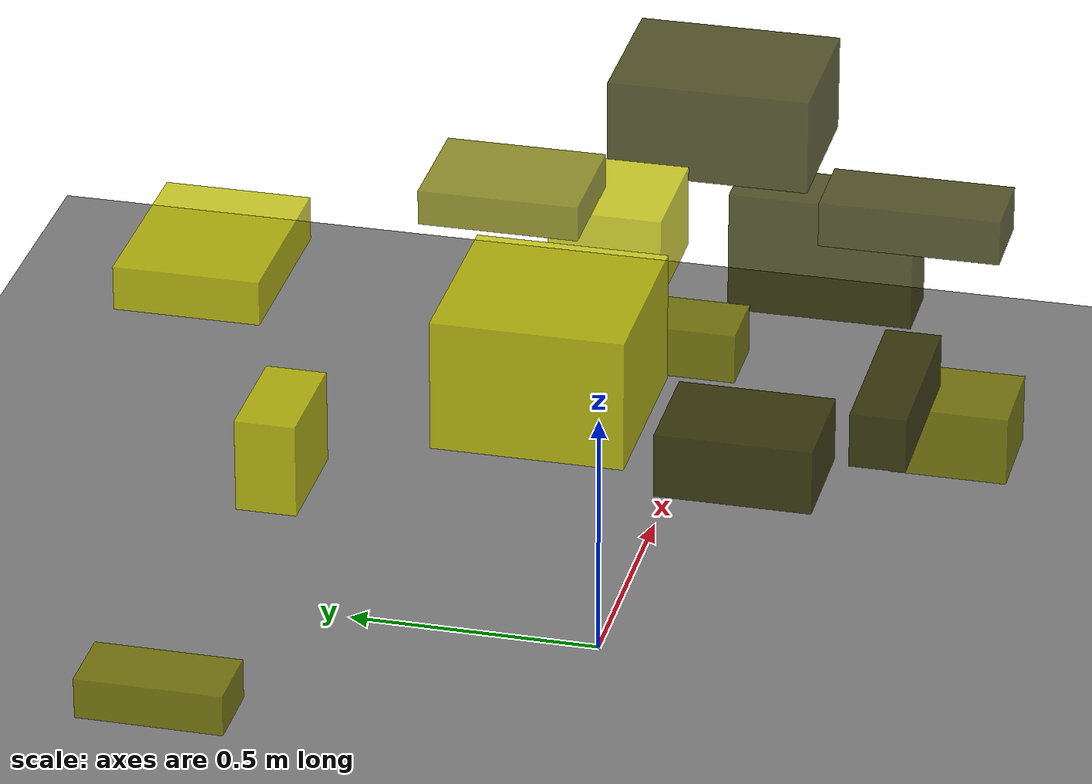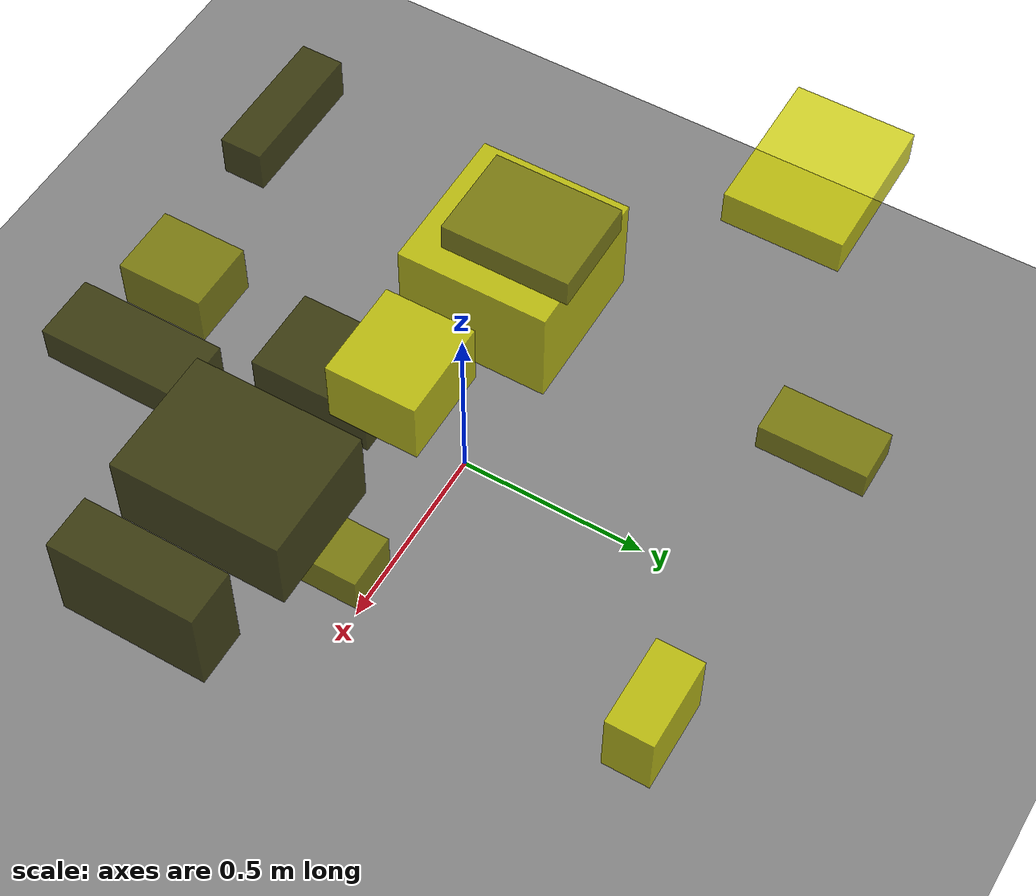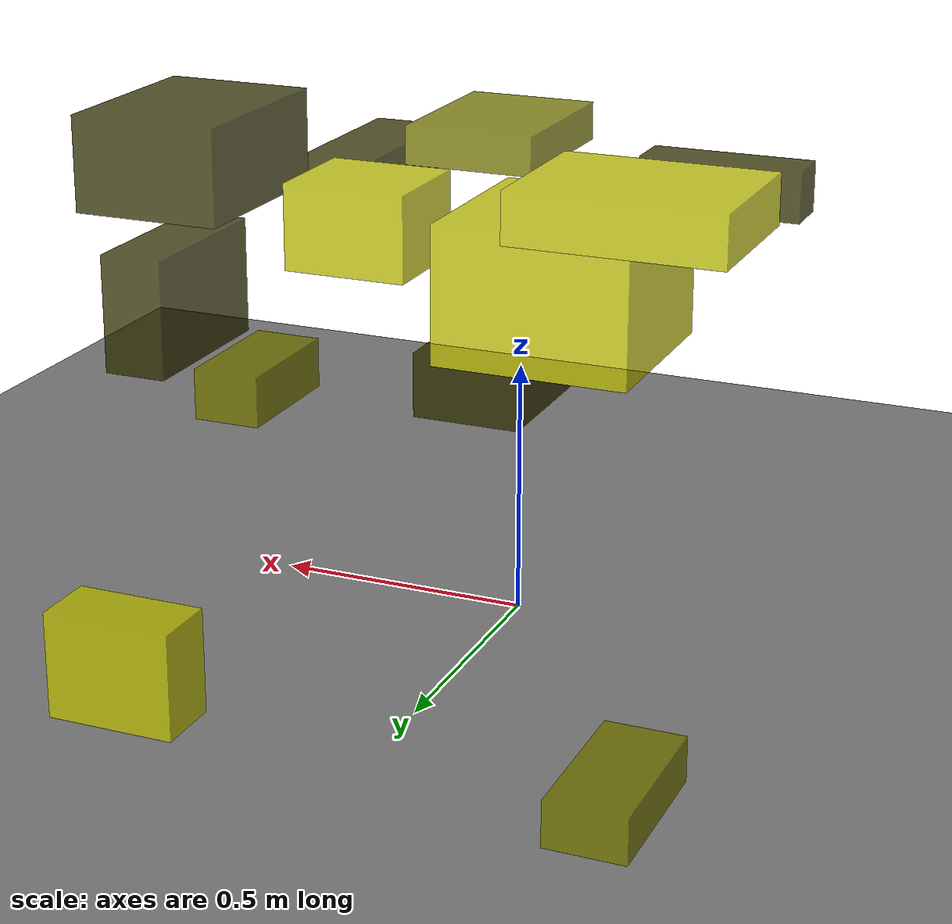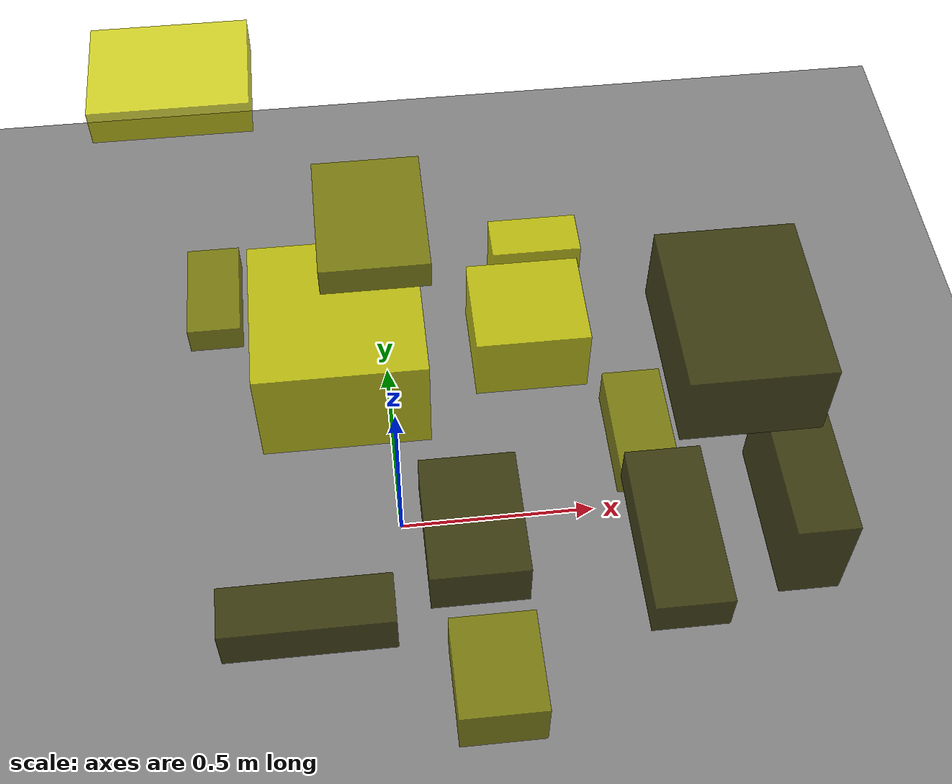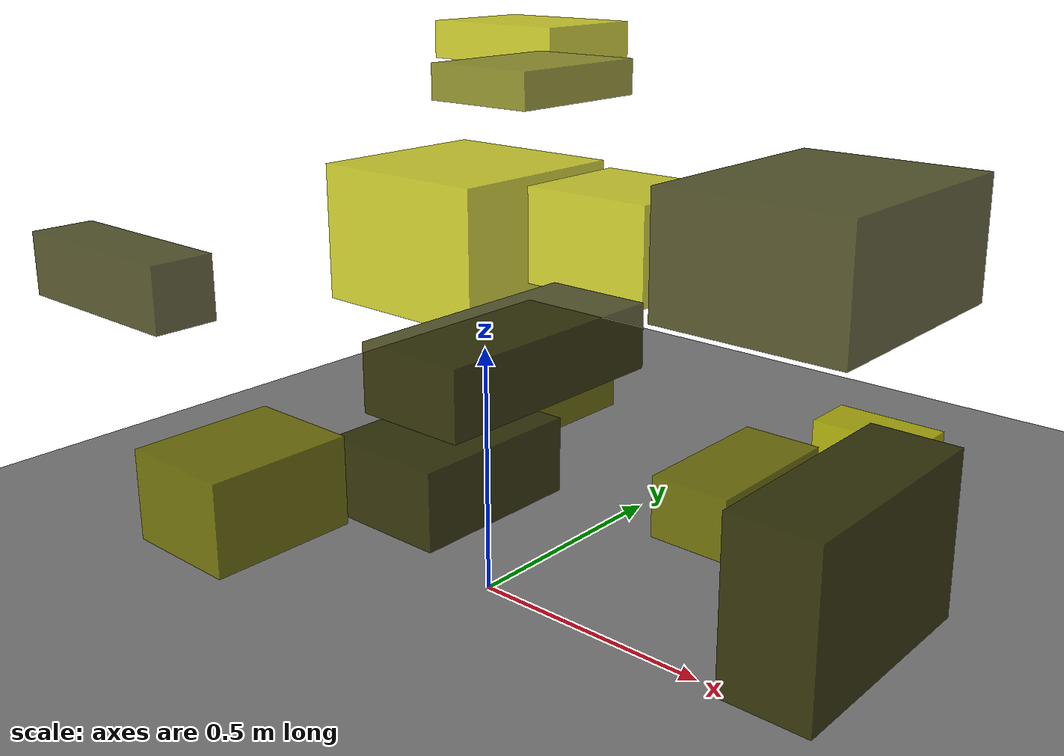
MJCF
<?xml version="1.0"?>
<mujoco model="obstacle_scene">
  <compiler angle="radian" coordinate="local"/>
  <option timestep="0.001" gravity="0 0 -9.81"/>

  <asset>
    <material name="obstacle_mat" rgba="0.8 0.8 0.0 0.8"/>
    <material name="ground_mat" rgba="0.5 0.5 0.5 1"/>
  </asset>

  <worldbody>
    <!-- Ground plane -->
    <geom name="ground" type="plane" size="3 3 0.1" material="ground_mat"/>

    <!-- Obstacles -->
    <body name="obstacle_0" pos="-0.209731 -0.612331 0.731654">
      <geom name="obs_0" type="box" size="0.172049 0.053192 0.053815" rgba="0.2 0.2 0.0 0.8"/>
    </body>
    <body name="obstacle_1" pos="-0.466935 0.752133 0.071883">
      <geom name="obs_1" type="box" size="0.072577 0.147188 0.042226" rgba="0.5 0.5 0.0 0.8"/>
    </body>
    <body name="obstacle_2" pos="0.437854 0.757842 0.129498">
      <geom name="obs_2" type="box" size="0.121607 0.062866 0.100007" rgba="0.8 0.8 0.0 0.8"/>
    </body>
    <body name="obstacle_3" pos="0.897130 -0.263617 0.460517">
      <geom name="obs_3" type="box" size="0.068970 0.188437 0.128588" rgba="0.2 0.2 0.0 0.8"/>
    </body>
    <body name="obstacle_4" pos="0.160334 -0.667889 0.494054">
      <geom name="obs_4" type="box" size="0.091978 0.111758 0.068778" rgba="0.5 0.5 0.0 0.8"/>
    </body>
    <body name="obstacle_5" pos="-0.112189 0.070179 0.700160">
      <geom name="obs_5" type="box" size="0.187376 0.186400 0.132195" rgba="0.8 0.8 0.0 0.8"/>
    </body>
    <body name="obstacle_6" pos="0.739383 -0.080946 0.832441">
      <geom name="obs_6" type="box" size="0.153767 0.201286 0.097723" rgba="0.2 0.2 0.0 0.8"/>
    </body>
    <body name="obstacle_7" pos="0.577371 -0.021608 0.389975">
      <geom name="obs_7" type="box" size="0.068897 0.136232 0.051840" rgba="0.5 0.5 0.0 0.8"/>
    </body>
    <body name="obstacle_8" pos="-0.443585 0.629623 1.006996">
      <geom name="obs_8" type="box" size="0.178143 0.138121 0.043057" rgba="0.8 0.8 0.0 0.8"/>
    </body>
    <body name="obstacle_9" pos="0.534912 -0.509914 0.735626">
      <geom name="obs_9" type="box" size="0.078469 0.179013 0.046019" rgba="0.2 0.2 0.0 0.8"/>
    </body>
    <body name="obstacle_10" pos="-0.022311 0.163966 0.987747">
      <geom name="obs_10" type="box" size="0.116203 0.153613 0.034331" rgba="0.5 0.5 0.0 0.8"/>
    </body>
    <body name="obstacle_11" pos="0.302096 0.032460 0.761607">
      <geom name="obs_11" type="box" size="0.122328 0.111153 0.084488" rgba="0.8 0.8 0.0 0.8"/>
    </body>
    <body name="obstacle_12" pos="0.155852 -0.253322 0.392266">
      <geom name="obs_12" type="box" size="0.112813 0.155366 0.066712" rgba="0.2 0.2 0.0 0.8"/>
    </body>
  </worldbody>
</mujoco>
